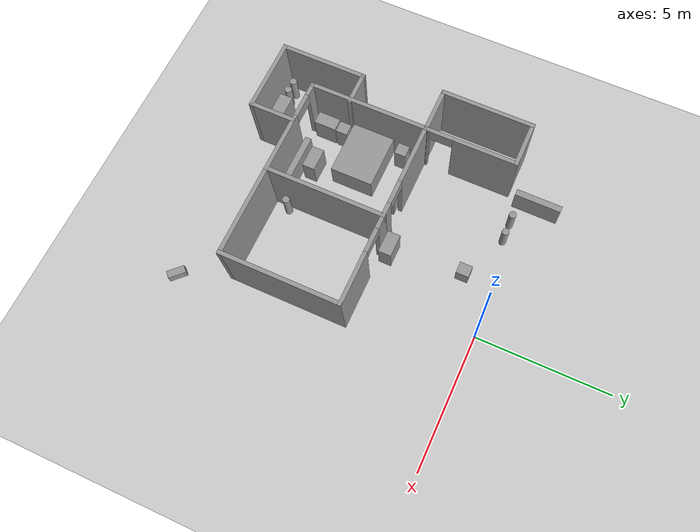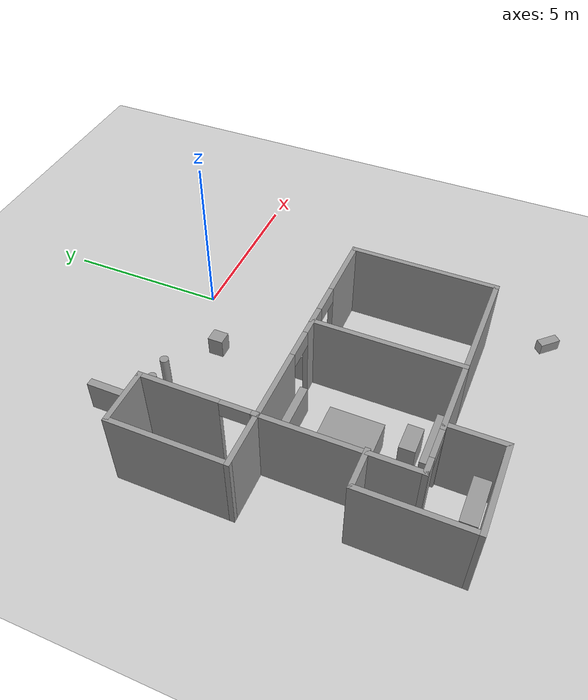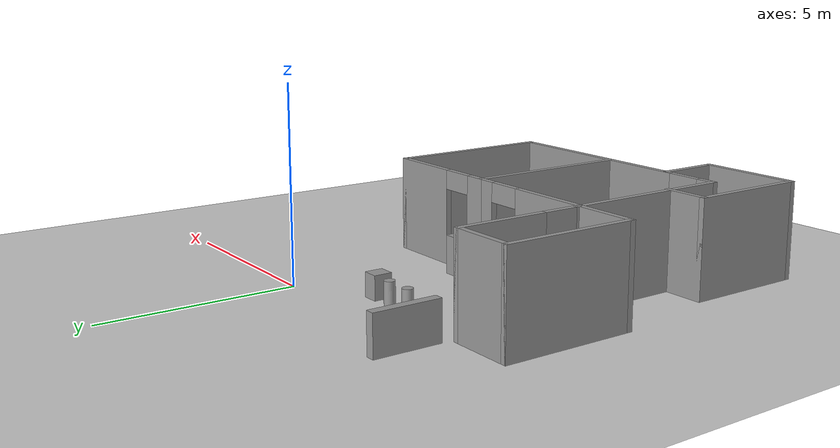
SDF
<sdf version="1.6">
 <world name="default">
  <model name="ground_plane">
   <static>1</static>
   <link name="link">
    <collision name="collision">
     <geometry><plane><normal>0 0 1</normal><size>100 100</size></plane></geometry>
     <surface><friction><ode><mu>100</mu><mu2>50</mu2></ode></friction></surface>
    </collision>
    <visual name="visual">
     <cast_shadows>0</cast_shadows>
     <geometry><plane><normal>0 0 1</normal><size>100 100</size></plane></geometry>
     <material>
      <script><uri>file://media/materials/scripts/gazebo.material</uri><name>Gazebo/Grey</name></script>
     </material>
    </visual>
   </link>
  </model>
  <model name="cma_varanda1">
   <pose>-6.32518 -2.59313 0 0 -0 0</pose>
   <link name="Wall_0">
    <pose>0.8 0 0 0 0 -1.5708</pose>
    <visual name="Wall_0_Visual_0">
     <pose>-0.5525 0 1.25 0 -0 0</pose>
     <geometry><box><size>2.395 0.15 2.5</size></box></geometry>
     <material>
      <script><uri>file://media/materials/scripts/gazebo.material</uri><name>Gazebo/Grey</name></script>
      <ambient>1 1 1 1</ambient>
     </material>
    </visual>
    <collision name="Wall_0_Collision_0">
     <geometry><box><size>2.395 0.15 2.5</size></box></geometry>
     <pose>-0.5525 0 1.25 0 -0 0</pose>
    </collision>
    <visual name="Wall_0_Visual_1">
     <pose>1.6375 0 1.25 0 -0 0</pose>
     <geometry><box><size>0.225 0.15 2.5</size></box></geometry>
     <material>
      <script><uri>file://media/materials/scripts/gazebo.material</uri><name>Gazebo/Grey</name></script>
      <ambient>1 1 1 1</ambient>
     </material>
    </visual>
    <collision name="Wall_0_Collision_1">
     <geometry><box><size>0.225 0.15 2.5</size></box></geometry>
     <pose>1.6375 0 1.25 0 -0 0</pose>
    </collision>
    <visual name="Wall_0_Visual_2">
     <pose>1.085 0 2.25 0 -0 0</pose>
     <geometry><box><size>0.88 0.15 0.5</size></box></geometry>
     <material>
      <script><uri>file://media/materials/scripts/gazebo.material</uri><name>Gazebo/Grey</name></script>
      <ambient>1 1 1 1</ambient>
     </material>
    </visual>
    <collision name="Wall_0_Collision_2">
     <geometry><box><size>0.88 0.15 0.5</size></box></geometry>
     <pose>1.085 0 2.25 0 -0 0</pose>
    </collision>
   </link>
   <link name="Wall_1">
    <collision name="Wall_1_Collision">
     <geometry><box><size>1.75 0.15 2.5</size></box></geometry>
     <pose>0 0 1.25 0 -0 0</pose>
    </collision>
    <visual name="Wall_1_Visual">
     <pose>0 0 1.25 0 -0 0</pose>
     <geometry><box><size>1.75 0.15 2.5</size></box></geometry>
     <material>
      <script><uri>file://media/materials/scripts/gazebo.material</uri><name>Gazebo/Grey</name></script>
      <ambient>1 1 1 1</ambient>
     </material>
    </visual>
    <pose>0 -1.675 0 0 -0 3.14159</pose>
   </link>
   <link name="Wall_2">
    <collision name="Wall_2_Collision">
     <geometry><box><size>3.5 0.15 2.5</size></box></geometry>
     <pose>0 0 1.25 0 -0 0</pose>
    </collision>
    <visual name="Wall_2_Visual">
     <pose>0 0 1.25 0 -0 0</pose>
     <geometry><box><size>3.5 0.15 2.5</size></box></geometry>
     <material>
      <script><uri>file://media/materials/scripts/gazebo.material</uri><name>Gazebo/Grey</name></script>
      <ambient>1 1 1 1</ambient>
     </material>
    </visual>
    <pose>-0.8 0 0 0 -0 1.5708</pose>
   </link>
   <link name="Wall_3">
    <collision name="Wall_3_Collision">
     <geometry><box><size>1.75 0.15 2.5</size></box></geometry>
     <pose>0 0 1.25 0 -0 0</pose>
    </collision>
    <visual name="Wall_3_Visual">
     <pose>0 0 1.25 0 -0 0</pose>
     <geometry><box><size>1.75 0.15 2.5</size></box></geometry>
     <material>
      <script><uri>file://media/materials/scripts/gazebo.material</uri><name>Gazebo/Grey</name></script>
      <ambient>1 1 1 1</ambient>
     </material>
    </visual>
    <pose>0 1.675 0 0 -0 0</pose>
   </link>
   <static>1</static>
  </model>
  <model name="cma_quartos">
   <pose>-2.58169 -7.26456 0 0 -0 0</pose>
   <link name="Wall_0">
    <collision name="Wall_0_Collision">
     <geometry><box><size>4.5 0.15 2.5</size></box></geometry>
     <pose>0 0 1.25 0 -0 0</pose>
    </collision>
    <visual name="Wall_0_Visual">
     <pose>0 0 1.25 0 -0 0</pose>
     <geometry><box><size>4.5 0.15 2.5</size></box></geometry>
     <material>
      <script><uri>file://media/materials/scripts/gazebo.material</uri><name>Gazebo/Grey</name></script>
      <ambient>1 1 1 1</ambient>
     </material>
    </visual>
    <pose>0.645 0.81 0 0 0 -1.5708</pose>
   </link>
   <link name="Wall_1">
    <pose>-1.155 -1.365 0 0 -0 3.14159</pose>
    <visual name="Wall_1_Visual_0">
     <pose>-0.7225 0 1.25 0 -0 0</pose>
     <geometry><box><size>2.305 0.15 2.5</size></box></geometry>
     <material>
      <script><uri>file://media/materials/scripts/gazebo.material</uri><name>Gazebo/Grey</name></script>
      <ambient>1 1 1 1</ambient>
     </material>
    </visual>
    <collision name="Wall_1_Collision_0">
     <geometry><box><size>2.305 0.15 2.5</size></box></geometry>
     <pose>-0.7225 0 1.25 0 -0 0</pose>
    </collision>
    <visual name="Wall_1_Visual_1">
     <pose>1.6025 0 1.25 0 -0 0</pose>
     <geometry><box><size>0.545 0.15 2.5</size></box></geometry>
     <material>
      <script><uri>file://media/materials/scripts/gazebo.material</uri><name>Gazebo/Grey</name></script>
      <ambient>1 1 1 1</ambient>
     </material>
    </visual>
    <collision name="Wall_1_Collision_1">
     <geometry><box><size>0.545 0.15 2.5</size></box></geometry>
     <pose>1.6025 0 1.25 0 -0 0</pose>
    </collision>
    <visual name="Wall_1_Visual_2">
     <pose>0.88 0 2.25 0 -0 0</pose>
     <geometry><box><size>0.9 0.15 0.5</size></box></geometry>
     <material>
      <script><uri>file://media/materials/scripts/gazebo.material</uri><name>Gazebo/Grey</name></script>
      <ambient>1 1 1 1</ambient>
     </material>
    </visual>
    <collision name="Wall_1_Collision_2">
     <geometry><box><size>0.9 0.15 0.5</size></box></geometry>
     <pose>0.88 0 2.25 0 -0 0</pose>
    </collision>
   </link>
   <link name="Wall_10">
    <collision name="Wall_10_Collision">
     <geometry><box><size>1.75 0.15 2.5</size></box></geometry>
     <pose>0 0 1.25 0 -0 0</pose>
    </collision>
    <visual name="Wall_10_Visual">
     <pose>0 0 1.25 0 -0 0</pose>
     <geometry><box><size>1.75 0.15 2.5</size></box></geometry>
     <material>
      <script><uri>file://media/materials/scripts/gazebo.material</uri><name>Gazebo/Grey</name></script>
      <ambient>1 1 1 1</ambient>
     </material>
    </visual>
    <pose>-1.395 -2.185 0 0 0 -1.5708</pose>
   </link>
   <link name="Wall_11">
    <collision name="Wall_11_Collision">
     <geometry><box><size>2.75 0.15 2.5</size></box></geometry>
     <pose>0 0 1.25 0 -0 0</pose>
    </collision>
    <visual name="Wall_11_Visual">
     <pose>0 0 1.25 0 -0 0</pose>
     <geometry><box><size>2.75 0.15 2.5</size></box></geometry>
     <material>
      <script><uri>file://media/materials/scripts/gazebo.material</uri><name>Gazebo/Grey</name></script>
      <ambient>1 1 1 1</ambient>
     </material>
    </visual>
    <pose>-2.695 -2.985 0 0 -0 3.14159</pose>
   </link>
   <link name="Wall_12">
    <collision name="Wall_12_Collision">
     <geometry><box><size>3.25 0.15 2.5</size></box></geometry>
     <pose>0 0 1.25 0 -0 0</pose>
    </collision>
    <visual name="Wall_12_Visual">
     <pose>0 0 1.25 0 -0 0</pose>
     <geometry><box><size>3.25 0.15 2.5</size></box></geometry>
     <material>
      <script><uri>file://media/materials/scripts/gazebo.material</uri><name>Gazebo/Grey</name></script>
      <ambient>1 1 1 1</ambient>
     </material>
    </visual>
    <pose>-3.995 -1.435 0 0 -0 1.5708</pose>
   </link>
   <link name="Wall_13">
    <collision name="Wall_13_Collision">
     <geometry><box><size>1.25 0.15 2.5</size></box></geometry>
     <pose>0 0 1.25 0 -0 0</pose>
    </collision>
    <visual name="Wall_13_Visual">
     <pose>0 0 1.25 0 -0 0</pose>
     <geometry><box><size>1.25 0.15 2.5</size></box></geometry>
     <material>
      <script><uri>file://media/materials/scripts/gazebo.material</uri><name>Gazebo/Grey</name></script>
      <ambient>1 1 1 1</ambient>
     </material>
    </visual>
    <pose>-3.445 0.115 0 0 -0 0</pose>
   </link>
   <link name="Wall_2">
    <collision name="Wall_2_Collision">
     <geometry><box><size>4.5 0.15 2.5</size></box></geometry>
     <pose>0 0 1.25 0 -0 0</pose>
    </collision>
    <visual name="Wall_2_Visual">
     <pose>0 0 1.25 0 -0 0</pose>
     <geometry><box><size>4.5 0.15 2.5</size></box></geometry>
     <material>
      <script><uri>file://media/materials/scripts/gazebo.material</uri><name>Gazebo/Grey</name></script>
      <ambient>1 1 1 1</ambient>
     </material>
    </visual>
    <pose>-2.955 0.81 0 0 -0 1.5708</pose>
   </link>
   <link name="Wall_3">
    <pose>-1.155 2.985 0 0 -0 0</pose>
    <visual name="Wall_3_Visual_0">
     <pose>-0.7325 0 1.25 0 -0 0</pose>
     <geometry><box><size>2.285 0.15 2.5</size></box></geometry>
     <material>
      <script><uri>file://media/materials/scripts/gazebo.material</uri><name>Gazebo/Grey</name></script>
      <ambient>1 1 1 1</ambient>
     </material>
    </visual>
    <collision name="Wall_3_Collision_0">
     <geometry><box><size>2.285 0.15 2.5</size></box></geometry>
     <pose>-0.7325 0 1.25 0 -0 0</pose>
    </collision>
    <visual name="Wall_3_Visual_1">
     <pose>1.5925 0 1.25 0 -0 0</pose>
     <geometry><box><size>0.565 0.15 2.5</size></box></geometry>
     <material>
      <script><uri>file://media/materials/scripts/gazebo.material</uri><name>Gazebo/Grey</name></script>
      <ambient>1 1 1 1</ambient>
     </material>
    </visual>
    <collision name="Wall_3_Collision_1">
     <geometry><box><size>0.565 0.15 2.5</size></box></geometry>
     <pose>1.5925 0 1.25 0 -0 0</pose>
    </collision>
    <visual name="Wall_3_Visual_2">
     <pose>0.86 0 2.25 0 -0 0</pose>
     <geometry><box><size>0.9 0.15 0.5</size></box></geometry>
     <material>
      <script><uri>file://media/materials/scripts/gazebo.material</uri><name>Gazebo/Grey</name></script>
      <ambient>1 1 1 1</ambient>
     </material>
    </visual>
    <collision name="Wall_3_Collision_2">
     <geometry><box><size>0.9 0.15 0.5</size></box></geometry>
     <pose>0.86 0 2.25 0 -0 0</pose>
    </collision>
   </link>
   <link name="Wall_6">
    <pose>2.32 2.985 0 0 -0 0</pose>
    <visual name="Wall_6_Visual_0">
     <pose>-1.4575 0 1.25 0 -0 0</pose>
     <geometry><box><size>0.585 0.15 2.5</size></box></geometry>
     <material>
      <script><uri>file://media/materials/scripts/gazebo.material</uri><name>Gazebo/Grey</name></script>
      <ambient>1 1 1 1</ambient>
     </material>
    </visual>
    <collision name="Wall_6_Collision_0">
     <geometry><box><size>0.585 0.15 2.5</size></box></geometry>
     <pose>-1.4575 0 1.25 0 -0 0</pose>
    </collision>
    <visual name="Wall_6_Visual_1">
     <pose>0.7425 0 1.25 0 -0 0</pose>
     <geometry><box><size>2.015 0.15 2.5</size></box></geometry>
     <material>
      <script><uri>file://media/materials/scripts/gazebo.material</uri><name>Gazebo/Grey</name></script>
      <ambient>1 1 1 1</ambient>
     </material>
    </visual>
    <collision name="Wall_6_Collision_1">
     <geometry><box><size>2.015 0.15 2.5</size></box></geometry>
     <pose>0.7425 0 1.25 0 -0 0</pose>
    </collision>
    <visual name="Wall_6_Visual_2">
     <pose>-0.715 0 2.25 0 -0 0</pose>
     <geometry><box><size>0.9 0.15 0.5</size></box></geometry>
     <material>
      <script><uri>file://media/materials/scripts/gazebo.material</uri><name>Gazebo/Grey</name></script>
      <ambient>1 1 1 1</ambient>
     </material>
    </visual>
    <collision name="Wall_6_Collision_2">
     <geometry><box><size>0.9 0.15 0.5</size></box></geometry>
     <pose>-0.715 0 2.25 0 -0 0</pose>
    </collision>
   </link>
   <link name="Wall_7">
    <collision name="Wall_7_Collision">
     <geometry><box><size>4.5 0.15 2.5</size></box></geometry>
     <pose>0 0 1.25 0 -0 0</pose>
    </collision>
    <visual name="Wall_7_Visual">
     <pose>0 0 1.25 0 -0 0</pose>
     <geometry><box><size>4.5 0.15 2.5</size></box></geometry>
     <material>
      <script><uri>file://media/materials/scripts/gazebo.material</uri><name>Gazebo/Grey</name></script>
      <ambient>1 1 1 1</ambient>
     </material>
    </visual>
    <pose>3.995 0.81 0 0 0 -1.5708</pose>
   </link>
   <link name="Wall_8">
    <collision name="Wall_8_Collision">
     <geometry><box><size>3.5 0.15 2.5</size></box></geometry>
     <pose>0 0 1.25 0 -0 0</pose>
    </collision>
    <visual name="Wall_8_Visual">
     <pose>0 0 1.25 0 -0 0</pose>
     <geometry><box><size>3.5 0.15 2.5</size></box></geometry>
     <material>
      <script><uri>file://media/materials/scripts/gazebo.material</uri><name>Gazebo/Grey</name></script>
      <ambient>1 1 1 1</ambient>
     </material>
    </visual>
    <pose>2.32 -1.365 0 0 -0 3.14159</pose>
   </link>
   <static>1</static>
  </model>
  <model name="cma_bau_s">
   <link name="link_1">
    <pose>0.109594 0.272293 0 0 -0 0</pose>
    <inertial>
     <mass>0.125479</mass>
     <inertia>
      <ixx>0.00641943</ixx>
      <ixy>0</ixy>
      <ixz>0</ixz>
      <iyy>0.0059754</iyy>
      <iyz>0</iyz>
      <izz>0.00422085</izz>
     </inertia>
    </inertial>
    <visual name="visual">
     <geometry><box><size>0.424964 0.472283 0.625118</size></box></geometry>
     <material>
      <lighting>1</lighting>
      <script><uri>file://media/materials/scripts/gazebo.material</uri><name>Gazebo/Grey</name></script>
      <ambient>0.3 0.3 0.3 1</ambient>
      <diffuse>0.7 0.7 0.7 1</diffuse>
      <specular>0.01 0.01 0.01 1</specular>
      <emissive>0 0 0 1</emissive>
     </material>
    </visual>
    <collision name="collision">
     <geometry><box><size>0.424964 0.472283 0.625118</size></box></geometry>
     <surface>
      <friction>
       <ode><mu>1</mu><mu2>1</mu2><fdir1>0 0 0</fdir1><slip1>0</slip1><slip2>0</slip2></ode>
       <torsional>
        <coefficient>1</coefficient>
        <patch_radius>0</patch_radius>
        <surface_radius>0</surface_radius>
        <use_patch_radius>1</use_patch_radius>
        <ode><slip>0</slip></ode>
       </torsional>
      </friction>
      <bounce><restitution_coefficient>0</restitution_coefficient><threshold>1e+06</threshold></bounce>
      <contact>
       <collide_without_contact>0</collide_without_contact>
       <collide_without_contact_bitmask>1</collide_without_contact_bitmask>
       <collide_bitmask>1</collide_bitmask>
       <ode>
        <soft_cfm>0</soft_cfm>
        <soft_erp>0.2</soft_erp>
        <kp>1e+13</kp>
        <kd>1</kd>
        <max_vel>0.01</max_vel>
        <min_depth>0</min_depth>
       </ode>
       <bullet>
        <split_impulse>1</split_impulse>
        <split_impulse_penetration_threshold>-0.01</split_impulse_penetration_threshold>
        <soft_cfm>0</soft_cfm>
        <soft_erp>0.2</soft_erp>
        <kp>1e+13</kp>
        <kd>1</kd>
       </bullet>
      </contact>
     </surface>
    </collision>
   </link>
   <static>0</static>
   <pose>-2.04294 -1.48569 0.312553 1.3e-05 -3e-06 0.000133</pose>
  </model>
  <model name="cma_armario_s">
   <link name="link_1">
    <pose>-2e-06 -3e-06 0 0 -0 0</pose>
    <inertial>
     <mass>0.390159</mass>
     <inertia>
      <ixx>0.039647</ixx>
      <ixy>0</ixy>
      <ixz>0</ixz>
      <iyy>0.0550708</iyy>
      <iyz>0</iyz>
      <izz>0.0296912</izz>
     </inertia>
    </inertial>
    <visual name="visual">
     <geometry><box><size>0.832942 0.468397 1</size></box></geometry>
     <material>
      <lighting>1</lighting>
      <script><uri>file://media/materials/scripts/gazebo.material</uri><name>Gazebo/Grey</name></script>
      <ambient>0.3 0.3 0.3 1</ambient>
      <diffuse>0.7 0.7 0.7 1</diffuse>
      <specular>0.01 0.01 0.01 1</specular>
      <emissive>0 0 0 1</emissive>
     </material>
    </visual>
    <collision name="collision">
     <geometry><box><size>0.832942 0.468397 1</size></box></geometry>
     <surface>
      <friction>
       <ode><mu>1</mu><mu2>1</mu2><fdir1>0 0 0</fdir1><slip1>0</slip1><slip2>0</slip2></ode>
       <torsional>
        <coefficient>1</coefficient>
        <patch_radius>0</patch_radius>
        <surface_radius>0</surface_radius>
        <use_patch_radius>1</use_patch_radius>
        <ode><slip>0</slip></ode>
       </torsional>
      </friction>
      <bounce><restitution_coefficient>0</restitution_coefficient><threshold>1e+06</threshold></bounce>
      <contact>
       <collide_without_contact>0</collide_without_contact>
       <collide_without_contact_bitmask>1</collide_without_contact_bitmask>
       <collide_bitmask>1</collide_bitmask>
       <ode>
        <soft_cfm>0</soft_cfm>
        <soft_erp>0.2</soft_erp>
        <kp>1e+13</kp>
        <kd>1</kd>
        <max_vel>0.01</max_vel>
        <min_depth>0</min_depth>
       </ode>
       <bullet>
        <split_impulse>1</split_impulse>
        <split_impulse_penetration_threshold>-0.01</split_impulse_penetration_threshold>
        <soft_cfm>0</soft_cfm>
        <soft_erp>0.2</soft_erp>
        <kp>1e+13</kp>
        <kd>1</kd>
       </bullet>
      </contact>
     </surface>
    </collision>
   </link>
   <static>0</static>
   <pose>-1.63842 -3.93804 0.5 0 -0 0.000276</pose>
  </model>
  <model name="cma_cama_c">
   <link name="link_0">
    <pose>5e-06 -4e-06 0 0 -0 0</pose>
    <inertial>
     <mass>3.18358</mass>
     <inertia><ixx>0.934862</ixx><ixy>0</ixy><ixz>0</ixz><iyy>1.33069</iyy><iyz>0</iyz><izz>1.73496</izz></inertia>
    </inertial>
    <visual name="visual">
     <geometry><box><size>2.00394 1.58866 1</size></box></geometry>
     <material>
      <lighting>1</lighting>
      <script><uri>file://media/materials/scripts/gazebo.material</uri><name>Gazebo/Grey</name></script>
      <ambient>0.3 0.3 0.3 1</ambient>
      <diffuse>0.7 0.7 0.7 1</diffuse>
      <specular>0.01 0.01 0.01 1</specular>
      <emissive>0 0 0 1</emissive>
     </material>
    </visual>
    <collision name="collision">
     <geometry><box><size>2.00394 1.58866 1</size></box></geometry>
     <surface>
      <friction>
       <ode><mu>1</mu><mu2>1</mu2><fdir1>0 0 0</fdir1><slip1>0</slip1><slip2>0</slip2></ode>
       <torsional>
        <coefficient>1</coefficient>
        <patch_radius>0</patch_radius>
        <surface_radius>0</surface_radius>
        <use_patch_radius>1</use_patch_radius>
        <ode><slip>0</slip></ode>
       </torsional>
      </friction>
      <bounce><restitution_coefficient>0</restitution_coefficient><threshold>1e+06</threshold></bounce>
      <contact>
       <collide_without_contact>0</collide_without_contact>
       <collide_without_contact_bitmask>1</collide_without_contact_bitmask>
       <collide_bitmask>1</collide_bitmask>
       <ode>
        <soft_cfm>0</soft_cfm>
        <soft_erp>0.2</soft_erp>
        <kp>1e+13</kp>
        <kd>1</kd>
        <max_vel>0.01</max_vel>
        <min_depth>0</min_depth>
       </ode>
       <bullet>
        <split_impulse>1</split_impulse>
        <split_impulse_penetration_threshold>-0.01</split_impulse_penetration_threshold>
        <soft_cfm>0</soft_cfm>
        <soft_erp>0.2</soft_erp>
        <kp>1e+13</kp>
        <kd>1</kd>
       </bullet>
      </contact>
     </surface>
    </collision>
   </link>
   <static>0</static>
   <pose>-4.43933 -6.24816 0.5 0 -0 0</pose>
  </model>
  <model name="cma_armario_0">
   <link name="link_0">
    <pose>1.32157 0.885178 0.5 0 -0 0</pose>
    <inertial>
     <mass>0.402376</mass>
     <inertia>
      <ixx>0.0353686</ixx>
      <ixy>0</ixy>
      <ixz>0</ixz>
      <iyy>0.132616</iyy>
      <iyz>0</iyz>
      <izz>0.100922</izz>
     </inertia>
    </inertial>
    <visual name="visual">
     <geometry><box><size>1.71877 0.234069 1</size></box></geometry>
     <material>
      <lighting>1</lighting>
      <script><uri>file://media/materials/scripts/gazebo.material</uri><name>Gazebo/Grey</name></script>
      <ambient>0.3 0.3 0.3 1</ambient>
      <diffuse>0.7 0.7 0.7 1</diffuse>
      <specular>0.01 0.01 0.01 1</specular>
      <emissive>0 0 0 1</emissive>
     </material>
    </visual>
    <collision name="collision">
     <geometry><box><size>1.71877 0.234069 1</size></box></geometry>
     <surface>
      <friction>
       <ode><mu>1</mu><mu2>1</mu2><fdir1>0 0 0</fdir1><slip1>0</slip1><slip2>0</slip2></ode>
       <torsional>
        <coefficient>1</coefficient>
        <patch_radius>0</patch_radius>
        <surface_radius>0</surface_radius>
        <use_patch_radius>1</use_patch_radius>
        <ode><slip>0</slip></ode>
       </torsional>
      </friction>
      <bounce><restitution_coefficient>0</restitution_coefficient><threshold>1e+06</threshold></bounce>
      <contact>
       <collide_without_contact>0</collide_without_contact>
       <collide_without_contact_bitmask>1</collide_without_contact_bitmask>
       <collide_bitmask>1</collide_bitmask>
       <ode>
        <soft_cfm>0</soft_cfm>
        <soft_erp>0.2</soft_erp>
        <kp>1e+13</kp>
        <kd>1</kd>
        <max_vel>0.01</max_vel>
        <min_depth>0</min_depth>
       </ode>
       <bullet>
        <split_impulse>1</split_impulse>
        <split_impulse_penetration_threshold>-0.01</split_impulse_penetration_threshold>
        <soft_cfm>0</soft_cfm>
        <soft_erp>0.2</soft_erp>
        <kp>1e+13</kp>
        <kd>1</kd>
       </bullet>
      </contact>
     </surface>
    </collision>
   </link>
   <static>0</static>
   <pose>-5.27708 -5.41843 0 0 0 -0.000671</pose>
  </model>
  <model name="cma_gaveteiro_pequeno_1">
   <link name="link_0">
    <pose>0.256174 1.25055 0.5 0 -0 0</pose>
    <inertial>
     <mass>0.187186</mass>
     <inertia>
      <ixx>0.01851</ixx>
      <ixy>0</ixy>
      <ixz>0</ixz>
      <iyy>0.0185276</iyy>
      <iyz>0</iyz>
      <izz>0.00583981</izz>
     </inertia>
    </inertial>
    <visual name="visual">
     <geometry><box><size>0.433317 0.432002 1</size></box></geometry>
     <material>
      <lighting>1</lighting>
      <script><uri>file://media/materials/scripts/gazebo.material</uri><name>Gazebo/Grey</name></script>
      <ambient>0.3 0.3 0.3 1</ambient>
      <diffuse>0.7 0.7 0.7 1</diffuse>
      <specular>0.01 0.01 0.01 1</specular>
      <emissive>0 0 0 1</emissive>
     </material>
    </visual>
    <collision name="collision">
     <geometry><box><size>0.433317 0.432002 1</size></box></geometry>
     <surface>
      <friction>
       <ode><mu>1</mu><mu2>1</mu2><fdir1>0 0 0</fdir1><slip1>0</slip1><slip2>0</slip2></ode>
       <torsional>
        <coefficient>1</coefficient>
        <patch_radius>0</patch_radius>
        <surface_radius>0</surface_radius>
        <use_patch_radius>1</use_patch_radius>
        <ode><slip>0</slip></ode>
       </torsional>
      </friction>
      <bounce><restitution_coefficient>0</restitution_coefficient><threshold>1e+06</threshold></bounce>
      <contact>
       <collide_without_contact>0</collide_without_contact>
       <collide_without_contact_bitmask>1</collide_without_contact_bitmask>
       <collide_bitmask>1</collide_bitmask>
       <ode>
        <soft_cfm>0</soft_cfm>
        <soft_erp>0.2</soft_erp>
        <kp>1e+13</kp>
        <kd>1</kd>
        <max_vel>0.01</max_vel>
        <min_depth>0</min_depth>
       </ode>
       <bullet>
        <split_impulse>1</split_impulse>
        <split_impulse_penetration_threshold>-0.01</split_impulse_penetration_threshold>
        <soft_cfm>0</soft_cfm>
        <soft_erp>0.2</soft_erp>
        <kp>1e+13</kp>
        <kd>1</kd>
       </bullet>
      </contact>
     </surface>
    </collision>
   </link>
   <static>0</static>
   <pose>-5.43094 -6.25507 0 0 0 -5e-06</pose>
  </model>
  <model name="cma_armario_s_0">
   <link name="link_1">
    <pose>-2e-06 -3e-06 0 0 -0 0</pose>
    <inertial>
     <mass>0.390159</mass>
     <inertia>
      <ixx>0.039647</ixx>
      <ixy>0</ixy>
      <ixz>0</ixz>
      <iyy>0.0550708</iyy>
      <iyz>0</iyz>
      <izz>0.0296912</izz>
     </inertia>
    </inertial>
    <visual name="visual">
     <geometry><box><size>0.832942 0.468397 1</size></box></geometry>
     <material>
      <lighting>1</lighting>
      <script><uri>file://media/materials/scripts/gazebo.material</uri><name>Gazebo/Grey</name></script>
      <ambient>0.3 0.3 0.3 1</ambient>
      <diffuse>0.7 0.7 0.7 1</diffuse>
      <specular>0.01 0.01 0.01 1</specular>
      <emissive>0 0 0 1</emissive>
     </material>
    </visual>
    <collision name="collision">
     <geometry><box><size>0.832942 0.468397 1</size></box></geometry>
     <surface>
      <friction>
       <ode><mu>1</mu><mu2>1</mu2><fdir1>0 0 0</fdir1><slip1>0</slip1><slip2>0</slip2></ode>
       <torsional>
        <coefficient>1</coefficient>
        <patch_radius>0</patch_radius>
        <surface_radius>0</surface_radius>
        <use_patch_radius>1</use_patch_radius>
        <ode><slip>0</slip></ode>
       </torsional>
      </friction>
      <bounce><restitution_coefficient>0</restitution_coefficient><threshold>1e+06</threshold></bounce>
      <contact>
       <collide_without_contact>0</collide_without_contact>
       <collide_without_contact_bitmask>1</collide_without_contact_bitmask>
       <collide_bitmask>1</collide_bitmask>
       <ode>
        <soft_cfm>0</soft_cfm>
        <soft_erp>0.2</soft_erp>
        <kp>1e+13</kp>
        <kd>1</kd>
        <max_vel>0.01</max_vel>
        <min_depth>0</min_depth>
       </ode>
       <bullet>
        <split_impulse>1</split_impulse>
        <split_impulse_penetration_threshold>-0.01</split_impulse_penetration_threshold>
        <soft_cfm>0</soft_cfm>
        <soft_erp>0.2</soft_erp>
        <kp>1e+13</kp>
        <kd>1</kd>
       </bullet>
      </contact>
     </surface>
    </collision>
   </link>
   <static>0</static>
   <pose>-5.16843 -8.01554 0.5 -4e-06 3e-06 -1.57497</pose>
  </model>
  <model name="cma_gaveteiro_pequeno_2">
   <link name="link_0">
    <pose>0.256174 1.25055 0.5 0 -0 0</pose>
    <inertial>
     <mass>0.187186</mass>
     <inertia>
      <ixx>0.01851</ixx>
      <ixy>0</ixy>
      <ixz>0</ixz>
      <iyy>0.0185276</iyy>
      <iyz>0</iyz>
      <izz>0.00583981</izz>
     </inertia>
    </inertial>
    <visual name="visual">
     <geometry><box><size>0.433317 0.432002 1</size></box></geometry>
     <material>
      <lighting>1</lighting>
      <script><uri>file://media/materials/scripts/gazebo.material</uri><name>Gazebo/Grey</name></script>
      <ambient>0.3 0.3 0.3 1</ambient>
      <diffuse>0.7 0.7 0.7 1</diffuse>
      <specular>0.01 0.01 0.01 1</specular>
      <emissive>0 0 0 1</emissive>
     </material>
    </visual>
    <collision name="collision">
     <geometry><box><size>0.433317 0.432002 1</size></box></geometry>
     <surface>
      <friction>
       <ode><mu>1</mu><mu2>1</mu2><fdir1>0 0 0</fdir1><slip1>0</slip1><slip2>0</slip2></ode>
       <torsional>
        <coefficient>1</coefficient>
        <patch_radius>0</patch_radius>
        <surface_radius>0</surface_radius>
        <use_patch_radius>1</use_patch_radius>
        <ode><slip>0</slip></ode>
       </torsional>
      </friction>
      <bounce><restitution_coefficient>0</restitution_coefficient><threshold>1e+06</threshold></bounce>
      <contact>
       <collide_without_contact>0</collide_without_contact>
       <collide_without_contact_bitmask>1</collide_without_contact_bitmask>
       <collide_bitmask>1</collide_bitmask>
       <ode>
        <soft_cfm>0</soft_cfm>
        <soft_erp>0.2</soft_erp>
        <kp>1e+13</kp>
        <kd>1</kd>
        <max_vel>0.01</max_vel>
        <min_depth>0</min_depth>
       </ode>
       <bullet>
        <split_impulse>1</split_impulse>
        <split_impulse_penetration_threshold>-0.01</split_impulse_penetration_threshold>
        <soft_cfm>0</soft_cfm>
        <soft_erp>0.2</soft_erp>
        <kp>1e+13</kp>
        <kd>1</kd>
       </bullet>
      </contact>
     </surface>
    </collision>
   </link>
   <static>0</static>
   <pose>-5.39163 -8.58552 2e-06 -3e-06 -3e-06 -3.8e-05</pose>
  </model>
  <model name="cma_armario_s_1">
   <link name="link_1">
    <pose>-2e-06 -3e-06 0 0 -0 0</pose>
    <inertial>
     <mass>0.390159</mass>
     <inertia>
      <ixx>0.039647</ixx>
      <ixy>0</ixy>
      <ixz>0</ixz>
      <iyy>0.0550708</iyy>
      <iyz>0</iyz>
      <izz>0.0296912</izz>
     </inertia>
    </inertial>
    <visual name="visual">
     <geometry><box><size>0.832942 0.468397 1</size></box></geometry>
     <material>
      <lighting>1</lighting>
      <script><uri>file://media/materials/scripts/gazebo.material</uri><name>Gazebo/Grey</name></script>
      <ambient>0.3 0.3 0.3 1</ambient>
      <diffuse>0.7 0.7 0.7 1</diffuse>
      <specular>0.01 0.01 0.01 1</specular>
      <emissive>0 0 0 1</emissive>
     </material>
    </visual>
    <collision name="collision">
     <geometry><box><size>0.832942 0.468397 1</size></box></geometry>
     <surface>
      <friction>
       <ode><mu>1</mu><mu2>1</mu2><fdir1>0 0 0</fdir1><slip1>0</slip1><slip2>0</slip2></ode>
       <torsional>
        <coefficient>1</coefficient>
        <patch_radius>0</patch_radius>
        <surface_radius>0</surface_radius>
        <use_patch_radius>1</use_patch_radius>
        <ode><slip>0</slip></ode>
       </torsional>
      </friction>
      <bounce><restitution_coefficient>0</restitution_coefficient><threshold>1e+06</threshold></bounce>
      <contact>
       <collide_without_contact>0</collide_without_contact>
       <collide_without_contact_bitmask>1</collide_without_contact_bitmask>
       <collide_bitmask>1</collide_bitmask>
       <ode>
        <soft_cfm>0</soft_cfm>
        <soft_erp>0.2</soft_erp>
        <kp>1e+13</kp>
        <kd>1</kd>
        <max_vel>0.01</max_vel>
        <min_depth>0</min_depth>
       </ode>
       <bullet>
        <split_impulse>1</split_impulse>
        <split_impulse_penetration_threshold>-0.01</split_impulse_penetration_threshold>
        <soft_cfm>0</soft_cfm>
        <soft_erp>0.2</soft_erp>
        <kp>1e+13</kp>
        <kd>1</kd>
       </bullet>
      </contact>
     </surface>
    </collision>
   </link>
   <static>0</static>
   <pose>-3.5795 -7.82377 0.5 0 -0 0.000275</pose>
  </model>
  <model name="cma_armario_1">
   <link name="link_0">
    <pose>1.32157 0.885178 0.5 0 -0 0</pose>
    <inertial>
     <mass>0.402376</mass>
     <inertia>
      <ixx>0.0353686</ixx>
      <ixy>0</ixy>
      <ixz>0</ixz>
      <iyy>0.132616</iyy>
      <iyz>0</iyz>
      <izz>0.100922</izz>
     </inertia>
    </inertial>
    <visual name="visual">
     <geometry><box><size>1.71877 0.234069 1</size></box></geometry>
     <material>
      <lighting>1</lighting>
      <script><uri>file://media/materials/scripts/gazebo.material</uri><name>Gazebo/Grey</name></script>
      <ambient>0.3 0.3 0.3 1</ambient>
      <diffuse>0.7 0.7 0.7 1</diffuse>
      <specular>0.01 0.01 0.01 1</specular>
      <emissive>0 0 0 1</emissive>
     </material>
    </visual>
    <collision name="collision">
     <geometry><box><size>1.71877 0.234069 1</size></box></geometry>
     <surface>
      <friction>
       <ode><mu>1</mu><mu2>1</mu2><fdir1>0 0 0</fdir1><slip1>0</slip1><slip2>0</slip2></ode>
       <torsional>
        <coefficient>1</coefficient>
        <patch_radius>0</patch_radius>
        <surface_radius>0</surface_radius>
        <use_patch_radius>1</use_patch_radius>
        <ode><slip>0</slip></ode>
       </torsional>
      </friction>
      <bounce><restitution_coefficient>0</restitution_coefficient><threshold>1e+06</threshold></bounce>
      <contact>
       <collide_without_contact>0</collide_without_contact>
       <collide_without_contact_bitmask>1</collide_without_contact_bitmask>
       <collide_bitmask>1</collide_bitmask>
       <ode>
        <soft_cfm>0</soft_cfm>
        <soft_erp>0.2</soft_erp>
        <kp>1e+13</kp>
        <kd>1</kd>
        <max_vel>0.01</max_vel>
        <min_depth>0</min_depth>
       </ode>
       <bullet>
        <split_impulse>1</split_impulse>
        <split_impulse_penetration_threshold>-0.01</split_impulse_penetration_threshold>
        <soft_cfm>0</soft_cfm>
        <soft_erp>0.2</soft_erp>
        <kp>1e+13</kp>
        <kd>1</kd>
       </bullet>
      </contact>
     </surface>
    </collision>
   </link>
   <static>0</static>
   <pose>-4.69991 -9.22685 0 0 0 -0.000671</pose>
  </model>
  <model name="cma_lixo_1">
   <link name="link_1">
    <pose>0.882962 1.81586 0.5 0 -0 0</pose>
    <inertial>
     <mass>0.0687644</mass>
     <inertia>
      <ixx>0.00602588</ixx>
      <ixy>0</ixy>
      <ixz>0</ixz>
      <iyy>0.00602588</iyy>
      <iyz>0</iyz>
      <izz>0.000591068</izz>
     </inertia>
    </inertial>
    <visual name="visual">
     <geometry><cylinder><radius>0.131112</radius><length>1</length></cylinder></geometry>
     <material>
      <lighting>1</lighting>
      <script><uri>file://media/materials/scripts/gazebo.material</uri><name>Gazebo/Grey</name></script>
      <ambient>0.3 0.3 0.3 1</ambient>
      <diffuse>0.7 0.7 0.7 1</diffuse>
      <specular>0.01 0.01 0.01 1</specular>
      <emissive>0 0 0 1</emissive>
     </material>
    </visual>
    <collision name="collision">
     <geometry><cylinder><radius>0.131112</radius><length>1</length></cylinder></geometry>
     <surface>
      <friction>
       <ode><mu>1</mu><mu2>1</mu2><fdir1>0 0 0</fdir1><slip1>0</slip1><slip2>0</slip2></ode>
       <torsional>
        <coefficient>1</coefficient>
        <patch_radius>0</patch_radius>
        <surface_radius>0</surface_radius>
        <use_patch_radius>1</use_patch_radius>
        <ode><slip>0</slip></ode>
       </torsional>
      </friction>
      <bounce><restitution_coefficient>0</restitution_coefficient><threshold>1e+06</threshold></bounce>
      <contact>
       <collide_without_contact>0</collide_without_contact>
       <collide_without_contact_bitmask>1</collide_without_contact_bitmask>
       <collide_bitmask>1</collide_bitmask>
       <ode>
        <soft_cfm>0</soft_cfm>
        <soft_erp>0.2</soft_erp>
        <kp>1e+13</kp>
        <kd>1</kd>
        <max_vel>0.01</max_vel>
        <min_depth>0</min_depth>
       </ode>
       <bullet>
        <split_impulse>1</split_impulse>
        <split_impulse_penetration_threshold>-0.01</split_impulse_penetration_threshold>
        <soft_cfm>0</soft_cfm>
        <soft_erp>0.2</soft_erp>
        <kp>1e+13</kp>
        <kd>1</kd>
       </bullet>
      </contact>
     </surface>
    </collision>
   </link>
   <static>0</static>
   <pose>-2.57103 -9.7975 -9e-06 0 -0 0</pose>
  </model>
  <model name="cma_armario_7">
   <link name="link_0">
    <pose>1.32157 0.885178 0.5 0 -0 0</pose>
    <inertial>
     <mass>0.402376</mass>
     <inertia>
      <ixx>0.0353686</ixx>
      <ixy>0</ixy>
      <ixz>0</ixz>
      <iyy>0.132616</iyy>
      <iyz>0</iyz>
      <izz>0.100922</izz>
     </inertia>
    </inertial>
    <visual name="visual">
     <geometry><box><size>1.71877 0.234069 1</size></box></geometry>
     <material>
      <lighting>1</lighting>
      <script><uri>file://media/materials/scripts/gazebo.material</uri><name>Gazebo/Grey</name></script>
      <ambient>0.3 0.3 0.3 1</ambient>
      <diffuse>0.7 0.7 0.7 1</diffuse>
      <specular>0.01 0.01 0.01 1</specular>
      <emissive>0 0 0 1</emissive>
     </material>
    </visual>
    <collision name="collision">
     <geometry><box><size>1.71877 0.234069 1</size></box></geometry>
     <surface>
      <friction>
       <ode><mu>1</mu><mu2>1</mu2><fdir1>0 0 0</fdir1><slip1>0</slip1><slip2>0</slip2></ode>
       <torsional>
        <coefficient>1</coefficient>
        <patch_radius>0</patch_radius>
        <surface_radius>0</surface_radius>
        <use_patch_radius>1</use_patch_radius>
        <ode><slip>0</slip></ode>
       </torsional>
      </friction>
      <bounce><restitution_coefficient>0</restitution_coefficient><threshold>1e+06</threshold></bounce>
      <contact>
       <collide_without_contact>0</collide_without_contact>
       <collide_without_contact_bitmask>1</collide_without_contact_bitmask>
       <collide_bitmask>1</collide_bitmask>
       <ode>
        <soft_cfm>0</soft_cfm>
        <soft_erp>0.2</soft_erp>
        <kp>1e+13</kp>
        <kd>1</kd>
        <max_vel>0.01</max_vel>
        <min_depth>0</min_depth>
       </ode>
       <bullet>
        <split_impulse>1</split_impulse>
        <split_impulse_penetration_threshold>-0.01</split_impulse_penetration_threshold>
        <soft_cfm>0</soft_cfm>
        <soft_erp>0.2</soft_erp>
        <kp>1e+13</kp>
        <kd>1</kd>
       </bullet>
      </contact>
     </surface>
    </collision>
   </link>
   <static>0</static>
   <pose>-4.38573 -1.06551 0 0 -0 1.5687</pose>
  </model>
  <model name="cma_lixo_2">
   <link name="link_1">
    <pose>0.882962 1.81586 0.5 0 -0 0</pose>
    <inertial>
     <mass>0.0687644</mass>
     <inertia>
      <ixx>0.00602588</ixx>
      <ixy>0</ixy>
      <ixz>0</ixz>
      <iyy>0.00602588</iyy>
      <iyz>0</iyz>
      <izz>0.000591068</izz>
     </inertia>
    </inertial>
    <visual name="visual">
     <geometry><cylinder><radius>0.131112</radius><length>1</length></cylinder></geometry>
     <material>
      <lighting>1</lighting>
      <script><uri>file://media/materials/scripts/gazebo.material</uri><name>Gazebo/Grey</name></script>
      <ambient>0.3 0.3 0.3 1</ambient>
      <diffuse>0.7 0.7 0.7 1</diffuse>
      <specular>0.01 0.01 0.01 1</specular>
      <emissive>0 0 0 1</emissive>
     </material>
    </visual>
    <collision name="collision">
     <geometry><cylinder><radius>0.131112</radius><length>1</length></cylinder></geometry>
     <surface>
      <friction>
       <ode><mu>1</mu><mu2>1</mu2><fdir1>0 0 0</fdir1><slip1>0</slip1><slip2>0</slip2></ode>
       <torsional>
        <coefficient>1</coefficient>
        <patch_radius>0</patch_radius>
        <surface_radius>0</surface_radius>
        <use_patch_radius>1</use_patch_radius>
        <ode><slip>0</slip></ode>
       </torsional>
      </friction>
      <bounce><restitution_coefficient>0</restitution_coefficient><threshold>1e+06</threshold></bounce>
      <contact>
       <collide_without_contact>0</collide_without_contact>
       <collide_without_contact_bitmask>1</collide_without_contact_bitmask>
       <collide_bitmask>1</collide_bitmask>
       <ode>
        <soft_cfm>0</soft_cfm>
        <soft_erp>0.2</soft_erp>
        <kp>1e+13</kp>
        <kd>1</kd>
        <max_vel>0.01</max_vel>
        <min_depth>0</min_depth>
       </ode>
       <bullet>
        <split_impulse>1</split_impulse>
        <split_impulse_penetration_threshold>-0.01</split_impulse_penetration_threshold>
        <soft_cfm>0</soft_cfm>
        <soft_erp>0.2</soft_erp>
        <kp>1e+13</kp>
        <kd>1</kd>
       </bullet>
      </contact>
     </surface>
    </collision>
   </link>
   <static>0</static>
   <pose>-5.27342 -2.21345 -9e-06 0 -0 0</pose>
  </model>
  <model name="cma_lixo_3">
   <link name="link_1">
    <pose>0.882962 1.81586 0.5 0 -0 0</pose>
    <inertial>
     <mass>0.0687644</mass>
     <inertia>
      <ixx>0.00602588</ixx>
      <ixy>0</ixy>
      <ixz>0</ixz>
      <iyy>0.00602588</iyy>
      <iyz>0</iyz>
      <izz>0.000591068</izz>
     </inertia>
    </inertial>
    <visual name="visual">
     <geometry><cylinder><radius>0.131112</radius><length>1</length></cylinder></geometry>
     <material>
      <lighting>1</lighting>
      <script><uri>file://media/materials/scripts/gazebo.material</uri><name>Gazebo/Grey</name></script>
      <ambient>0.3 0.3 0.3 1</ambient>
      <diffuse>0.7 0.7 0.7 1</diffuse>
      <specular>0.01 0.01 0.01 1</specular>
      <emissive>0 0 0 1</emissive>
     </material>
    </visual>
    <collision name="collision">
     <geometry><cylinder><radius>0.131112</radius><length>1</length></cylinder></geometry>
     <surface>
      <friction>
       <ode><mu>1</mu><mu2>1</mu2><fdir1>0 0 0</fdir1><slip1>0</slip1><slip2>0</slip2></ode>
       <torsional>
        <coefficient>1</coefficient>
        <patch_radius>0</patch_radius>
        <surface_radius>0</surface_radius>
        <use_patch_radius>1</use_patch_radius>
        <ode><slip>0</slip></ode>
       </torsional>
      </friction>
      <bounce><restitution_coefficient>0</restitution_coefficient><threshold>1e+06</threshold></bounce>
      <contact>
       <collide_without_contact>0</collide_without_contact>
       <collide_without_contact_bitmask>1</collide_without_contact_bitmask>
       <collide_bitmask>1</collide_bitmask>
       <ode>
        <soft_cfm>0</soft_cfm>
        <soft_erp>0.2</soft_erp>
        <kp>1e+13</kp>
        <kd>1</kd>
        <max_vel>0.01</max_vel>
        <min_depth>0</min_depth>
       </ode>
       <bullet>
        <split_impulse>1</split_impulse>
        <split_impulse_penetration_threshold>-0.01</split_impulse_penetration_threshold>
        <soft_cfm>0</soft_cfm>
        <soft_erp>0.2</soft_erp>
        <kp>1e+13</kp>
        <kd>1</kd>
       </bullet>
      </contact>
     </surface>
    </collision>
   </link>
   <static>0</static>
   <pose>-4.57495 -2.209 -9e-06 0 -0 0</pose>
  </model>
  <model name="cma_barra_70cmD">
   <link name="link_2">
    <pose>3.79375 1.34046 0.5 0 0 -0.803534</pose>
    <inertial>
     <mass>0.0631368</mass>
     <inertia>
      <ixx>0.00106542</ixx>
      <ixy>0</ixy>
      <ixz>0</ixz>
      <iyy>0.00284727</iyy>
      <iyz>0</iyz>
      <izz>0.0025815</izz>
     </inertia>
    </inertial>
    <visual name="visual">
     <geometry><box><size>0.643938 0.275728 0.355737</size></box></geometry>
     <material>
      <lighting>1</lighting>
      <script><uri>file://media/materials/scripts/gazebo.material</uri><name>Gazebo/Grey</name></script>
      <ambient>0.3 0.3 0.3 1</ambient>
      <diffuse>0.7 0.7 0.7 1</diffuse>
      <specular>0.01 0.01 0.01 1</specular>
      <emissive>0 0 0 1</emissive>
     </material>
    </visual>
    <collision name="collision">
     <geometry><box><size>0.643938 0.275728 0.355737</size></box></geometry>
     <surface>
      <friction>
       <ode><mu>1</mu><mu2>1</mu2><fdir1>0 0 0</fdir1><slip1>0</slip1><slip2>0</slip2></ode>
       <torsional>
        <coefficient>1</coefficient>
        <patch_radius>0</patch_radius>
        <surface_radius>0</surface_radius>
        <use_patch_radius>1</use_patch_radius>
        <ode><slip>0</slip></ode>
       </torsional>
      </friction>
      <bounce><restitution_coefficient>0</restitution_coefficient><threshold>1e+06</threshold></bounce>
      <contact>
       <collide_without_contact>0</collide_without_contact>
       <collide_without_contact_bitmask>1</collide_without_contact_bitmask>
       <collide_bitmask>1</collide_bitmask>
       <ode>
        <soft_cfm>0</soft_cfm>
        <soft_erp>0.2</soft_erp>
        <kp>1e+13</kp>
        <kd>1</kd>
        <max_vel>0.01</max_vel>
        <min_depth>0</min_depth>
       </ode>
       <bullet>
        <split_impulse>1</split_impulse>
        <split_impulse_penetration_threshold>-0.01</split_impulse_penetration_threshold>
        <soft_cfm>0</soft_cfm>
        <soft_erp>0.2</soft_erp>
        <kp>1e+13</kp>
        <kd>1</kd>
       </bullet>
      </contact>
     </surface>
    </collision>
   </link>
   <static>0</static>
   <pose>-1.65308 -11.8269 -0.322132 0 -0 0.003205</pose>
  </model>
  <model name="unit_box_7">
   <pose>-6.04809 -8.5793 0.5 0 -0 0</pose>
   <link name="link">
    <inertial>
     <mass>1</mass>
     <inertia>
      <ixx>0.166667</ixx>
      <ixy>0</ixy>
      <ixz>0</ixz>
      <iyy>0.166667</iyy>
      <iyz>0</iyz>
      <izz>0.166667</izz>
     </inertia>
    </inertial>
    <collision name="collision"><geometry><box><size>0.734487 0.260084 0.54154</size></box></geometry></collision>
    <visual name="visual">
     <geometry><box><size>0.734487 0.260084 0.54154</size></box></geometry>
     <material>
      <script><name>Gazebo/Grey</name><uri>file://media/materials/scripts/gazebo.material</uri></script>
     </material>
    </visual>
   </link>
  </model>
  <model name="cma_lixo_7">
   <link name="link_1">
    <pose>0.882962 1.81586 0.5 0 -0 0</pose>
    <inertial>
     <mass>0.0687644</mass>
     <inertia>
      <ixx>0.00602588</ixx>
      <ixy>0</ixy>
      <ixz>0</ixz>
      <iyy>0.00602588</iyy>
      <iyz>0</iyz>
      <izz>0.000591068</izz>
     </inertia>
    </inertial>
    <visual name="visual">
     <geometry><cylinder><radius>0.131112</radius><length>1</length></cylinder></geometry>
     <material>
      <lighting>1</lighting>
      <script><uri>file://media/materials/scripts/gazebo.material</uri><name>Gazebo/Grey</name></script>
      <ambient>0.3 0.3 0.3 1</ambient>
      <diffuse>0.7 0.7 0.7 1</diffuse>
      <specular>0.01 0.01 0.01 1</specular>
      <emissive>0 0 0 1</emissive>
     </material>
    </visual>
    <collision name="collision">
     <geometry><cylinder><radius>0.131112</radius><length>1</length></cylinder></geometry>
     <surface>
      <friction>
       <ode><mu>1</mu><mu2>1</mu2><fdir1>0 0 0</fdir1><slip1>0</slip1><slip2>0</slip2></ode>
       <torsional>
        <coefficient>1</coefficient>
        <patch_radius>0</patch_radius>
        <surface_radius>0</surface_radius>
        <use_patch_radius>1</use_patch_radius>
        <ode><slip>0</slip></ode>
       </torsional>
      </friction>
      <bounce><restitution_coefficient>0</restitution_coefficient><threshold>1e+06</threshold></bounce>
      <contact>
       <collide_without_contact>0</collide_without_contact>
       <collide_without_contact_bitmask>1</collide_without_contact_bitmask>
       <collide_bitmask>1</collide_bitmask>
       <ode>
        <soft_cfm>0</soft_cfm>
        <soft_erp>0.2</soft_erp>
        <kp>1e+13</kp>
        <kd>1</kd>
        <max_vel>0.01</max_vel>
        <min_depth>0</min_depth>
       </ode>
       <bullet>
        <split_impulse>1</split_impulse>
        <split_impulse_penetration_threshold>-0.01</split_impulse_penetration_threshold>
        <soft_cfm>0</soft_cfm>
        <soft_erp>0.2</soft_erp>
        <kp>1e+13</kp>
        <kd>1</kd>
       </bullet>
      </contact>
     </surface>
    </collision>
   </link>
   <static>0</static>
   <pose>-7.0699 -11.7463 0 0 -0 0</pose>
  </model>
  <model name="unit_box_8">
   <pose>-4.79895 -9.87789 0.5 0 -0 0</pose>
   <link name="link">
    <inertial>
     <mass>1</mass>
     <inertia>
      <ixx>0.166667</ixx>
      <ixy>0</ixy>
      <ixz>0</ixz>
      <iyy>0.166667</iyy>
      <iyz>0</iyz>
      <izz>0.166667</izz>
     </inertia>
    </inertial>
    <collision name="collision"><geometry><box><size>1.43999 0.490647 1</size></box></geometry></collision>
    <visual name="visual">
     <geometry><box><size>1.43999 0.490647 1</size></box></geometry>
     <material>
      <script><name>Gazebo/Grey</name><uri>file://media/materials/scripts/gazebo.material</uri></script>
     </material>
    </visual>
   </link>
  </model>
  <model name="cma_lixo_8">
   <link name="link_1">
    <pose>0.882962 1.81586 0.5 0 -0 0</pose>
    <inertial>
     <mass>0.0687644</mass>
     <inertia>
      <ixx>0.00602588</ixx>
      <ixy>0</ixy>
      <ixz>0</ixz>
      <iyy>0.00602588</iyy>
      <iyz>0</iyz>
      <izz>0.000591068</izz>
     </inertia>
    </inertial>
    <visual name="visual">
     <geometry><cylinder><radius>0.131112</radius><length>1</length></cylinder></geometry>
     <material>
      <lighting>1</lighting>
      <script><uri>file://media/materials/scripts/gazebo.material</uri><name>Gazebo/Grey</name></script>
      <ambient>0.3 0.3 0.3 1</ambient>
      <diffuse>0.7 0.7 0.7 1</diffuse>
      <specular>0.01 0.01 0.01 1</specular>
      <emissive>0 0 0 1</emissive>
     </material>
    </visual>
    <collision name="collision">
     <geometry><cylinder><radius>0.131112</radius><length>1</length></cylinder></geometry>
     <surface>
      <friction>
       <ode><mu>1</mu><mu2>1</mu2><fdir1>0 0 0</fdir1><slip1>0</slip1><slip2>0</slip2></ode>
       <torsional>
        <coefficient>1</coefficient>
        <patch_radius>0</patch_radius>
        <surface_radius>0</surface_radius>
        <use_patch_radius>1</use_patch_radius>
        <ode><slip>0</slip></ode>
       </torsional>
      </friction>
      <bounce><restitution_coefficient>0</restitution_coefficient><threshold>1e+06</threshold></bounce>
      <contact>
       <collide_without_contact>0</collide_without_contact>
       <collide_without_contact_bitmask>1</collide_without_contact_bitmask>
       <collide_bitmask>1</collide_bitmask>
       <ode>
        <soft_cfm>0</soft_cfm>
        <soft_erp>0.2</soft_erp>
        <kp>1e+13</kp>
        <kd>1</kd>
        <max_vel>0.01</max_vel>
        <min_depth>0</min_depth>
       </ode>
       <bullet>
        <split_impulse>1</split_impulse>
        <split_impulse_penetration_threshold>-0.01</split_impulse_penetration_threshold>
        <soft_cfm>0</soft_cfm>
        <soft_erp>0.2</soft_erp>
        <kp>1e+13</kp>
        <kd>1</kd>
       </bullet>
      </contact>
     </surface>
    </collision>
   </link>
   <static>0</static>
   <pose>-6.67641 -11.7667 0 0 -0 0</pose>
  </model>
 </world>
</sdf>
